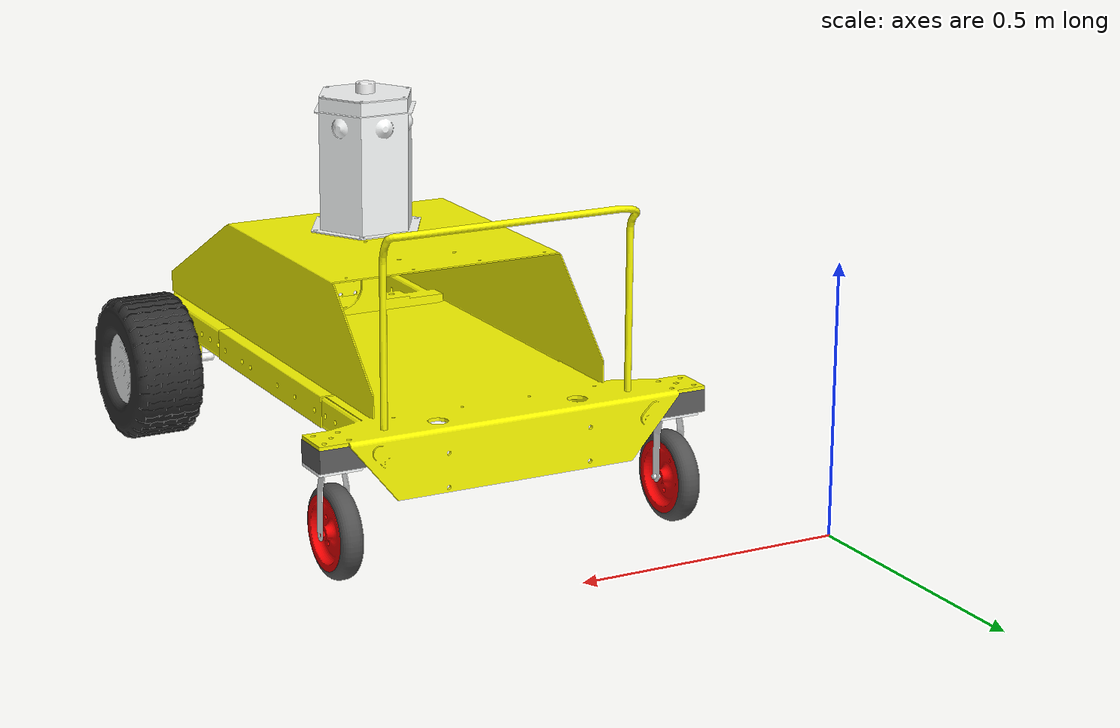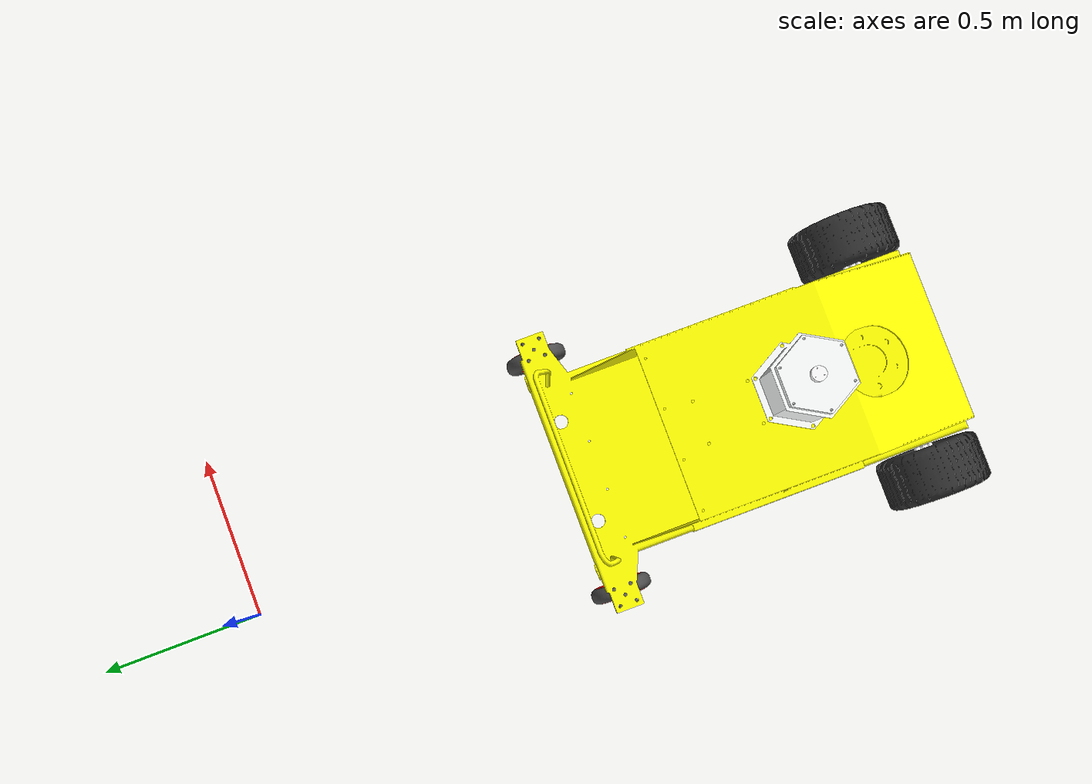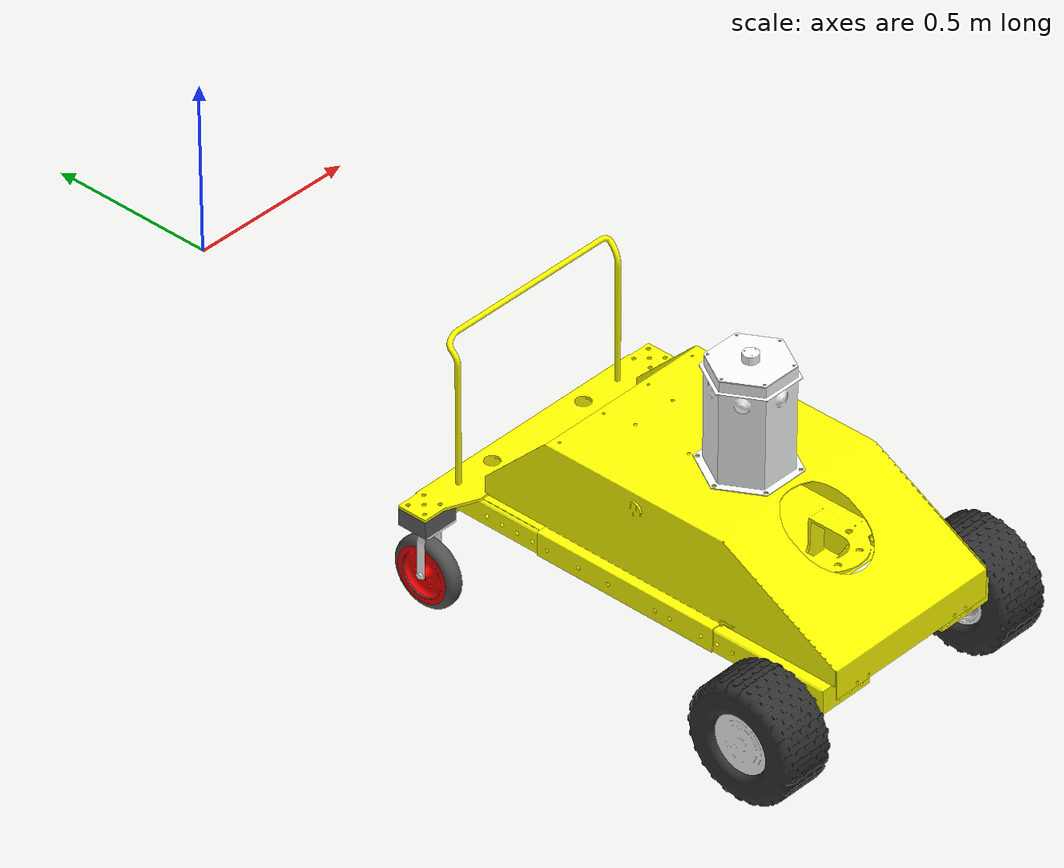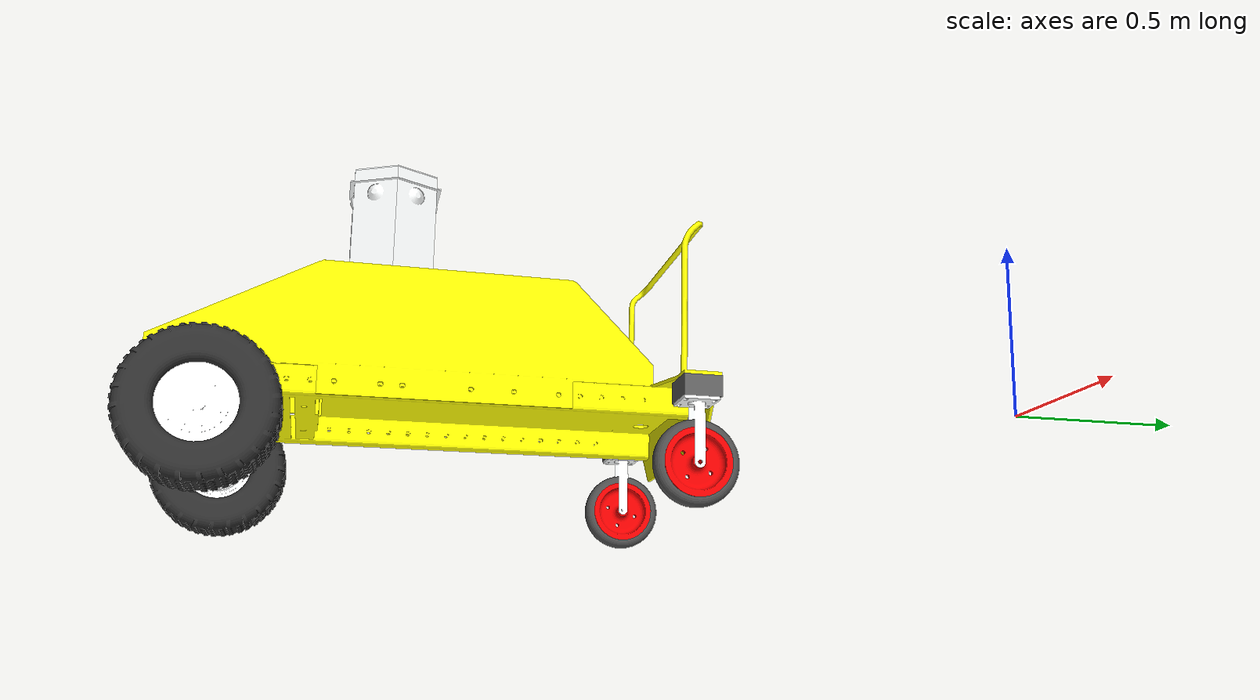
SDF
<sdf version='1.9'>
  <model name='diff_drive'>
    <link name='base_footprint'>
      <inertial>
        <pose>0.07544957438793549 -1.274730522447417 0.4900171970611519 0 0 0</pose>
        <mass>44.372311544085179</mass>
        <inertia>
          <ixx>69.291460034692093</ixx>
          <ixy>0.0020389307451935679</ixy>
          <ixz>-0.0028236960513194909</ixz>
          <iyy>33.544708364109603</iyy>
          <iyz>-32.893688374363478</iyz>
          <izz>42.136564144933899</izz>
        </inertia>
      </inertial>
      <collision name='base_footprint_fixed_joint_lump__base_link_collision'>
        <pose>0 0 0.001 0 0 0</pose>
        <geometry>
          <mesh>
            <scale>1 1 1</scale>
            <uri>model://diff_drive/meshes/visual/base_link.STL</uri>
          </mesh>
        </geometry>
      </collision>
      <collision name='base_footprint_fixed_joint_lump__casterSupportLeft_collision_1'>
        <pose>0.5162600000000001 -1.0733 -0.26944 1.5708 0 0</pose>
        <geometry>
          <mesh>
            <scale>1 1 1</scale>
            <uri>model://diff_drive/meshes/visual/casterSupportLeft.STL</uri>
          </mesh>
        </geometry>
      </collision>
      <collision name='base_footprint_fixed_joint_lump__casterHolderLeft_collision_2'>
        <pose>0.5162600000000001 -1.0733 -0.26944 1.5708 0 0</pose>
        <geometry>
          <mesh>
            <scale>1 1 1</scale>
            <uri>model://diff_drive/meshes/visual/casterHolderLeft.STL</uri>
          </mesh>
        </geometry>
      </collision>
      <collision name='base_footprint_fixed_joint_lump__casterSupportRight_collision_3'>
        <pose>-0.36024 -1.0733 -0.26944 1.5708 0 0</pose>
        <geometry>
          <mesh>
            <scale>1 1 1</scale>
            <uri>model://diff_drive/meshes/visual/casterSupportRight.STL</uri>
          </mesh>
        </geometry>
      </collision>
      <collision name='base_footprint_fixed_joint_lump__casterHolderRight_collision_4'>
        <pose>-0.36024 -1.0733 -0.26944 1.5708 0 0</pose>
        <geometry>
          <mesh>
            <scale>1 1 1</scale>
            <uri>model://diff_drive/meshes/visual/casterHolderRight.STL</uri>
          </mesh>
        </geometry>
      </collision>
      <collision name='base_footprint_fixed_joint_lump__chassis_collision_5'>
        <pose>0.07695787020212611 -1.52680535726289 0.181738869902464 1.5707963267949 0 0</pose>
        <geometry>
          <mesh>
            <scale>1 1 1</scale>
            <uri>model://diff_drive/meshes/visual/chassis.STL</uri>
          </mesh>
        </geometry>
      </collision>
      <collision name='base_footprint_fixed_joint_lump__tower_collision_6'>
        <pose>-0.009422172807446796 -1.706207102550672 0.3140945598622664 1.5707963267949 0 0</pose>
        <geometry>
          <mesh>
            <scale>1 1 1</scale>
            <uri>model://diff_drive/meshes/visual/tower.STL</uri>
          </mesh>
        </geometry>
      </collision>
      <collision name='base_footprint_fixed_joint_lump__lidar_collision_7'>
        <pose>0.0764647713571876 -1.756299895789236 0.5135084996232981 1.5707963267949 0 0</pose>
        <geometry>
          <mesh>
            <scale>1 1 1</scale>
            <uri>model://diff_drive/meshes/visual/lidar.STL</uri>
          </mesh>
        </geometry>
      </collision>
      <collision name='base_footprint_fixed_joint_lump__towerLid_collision_8'>
        <pose>-0.009422172807446796 -1.706207102550672 0.3140945598622664 1.5707963267949 0 0</pose>
        <geometry>
          <mesh>
            <scale>1 1 1</scale>
            <uri>model://diff_drive/meshes/visual/towerLid.STL</uri>
          </mesh>
        </geometry>
      </collision>
      <collision name='base_footprint_fixed_joint_lump__tireLeft_collision_9'>
        <pose>0.539077625848538 -2.14317773349735 -0.200666803080188 1.5707963267949 0 0</pose>
        <geometry>
          <mesh>
            <scale>1 1 1</scale>
            <uri>model://diff_drive/meshes/visual/tireLeft.STL</uri>
          </mesh>
        </geometry>
      </collision>
      <collision name='base_footprint_fixed_joint_lump__tireRIght_collision_10'>
        <pose>-0.387860216208303 -2.14524794513276 -0.201298122418271 1.5707963267949 0 0</pose>
        <geometry>
          <mesh>
            <scale>1 1 1</scale>
            <uri>model://diff_drive/meshes/visual/tireRIght.STL</uri>
          </mesh>
        </geometry>
      </collision>
      <visual name='base_footprint_visual'>
        <pose>0 0 0 0 0 0</pose>
        <geometry>
          <box>
            <size>0.001 0.001 0.001</size>
          </box>
        </geometry>
      </visual>
      <visual name='base_footprint_fixed_joint_lump__base_link_visual_1'>
        <pose>0 0 0.001 0 0 0</pose>
        <geometry>
          <mesh>
            <scale>1 1 1</scale>
            <uri>model://diff_drive/meshes/visual/base_link.STL</uri>
          </mesh>
        </geometry>
        <material>
          <diffuse>1 1 0 1</diffuse>
          <ambient>1 1 0 1</ambient>
        </material>
      </visual>
      <visual name='base_footprint_fixed_joint_lump__casterSupportLeft_visual_2'>
        <pose>0.5162600000000001 -1.0733 -0.26944 1.5708 0 0</pose>
        <geometry>
          <mesh>
            <scale>1 1 1</scale>
            <uri>model://diff_drive/meshes/visual/casterSupportLeft.STL</uri>
          </mesh>
        </geometry>
        <material>
          <diffuse>0.36765 0.36765 0.36765 1</diffuse>
          <ambient>0.36765 0.36765 0.36765 1</ambient>
        </material>
      </visual>
      <visual name='base_footprint_fixed_joint_lump__casterHolderLeft_visual_3'>
        <pose>0.5162600000000001 -1.0733 -0.26944 1.5708 0 0</pose>
        <geometry>
          <mesh>
            <scale>1 1 1</scale>
            <uri>model://diff_drive/meshes/visual/casterHolderLeft.STL</uri>
          </mesh>
        </geometry>
        <material>
          <diffuse>0.990196 1 1 1</diffuse>
          <ambient>0.990196 1 1 1</ambient>
        </material>
      </visual>
      <visual name='base_footprint_fixed_joint_lump__casterSupportRight_visual_4'>
        <pose>-0.36024 -1.0733 -0.26944 1.5708 0 0</pose>
        <geometry>
          <mesh>
            <scale>1 1 1</scale>
            <uri>model://diff_drive/meshes/visual/casterSupportRight.STL</uri>
          </mesh>
        </geometry>
        <material>
          <diffuse>0.36765 0.36765 0.36765 1</diffuse>
          <ambient>0.36765 0.36765 0.36765 1</ambient>
        </material>
      </visual>
      <visual name='base_footprint_fixed_joint_lump__casterHolderRight_visual_5'>
        <pose>-0.36024 -1.0733 -0.26944 1.5708 0 0</pose>
        <geometry>
          <mesh>
            <scale>1 1 1</scale>
            <uri>model://diff_drive/meshes/visual/casterHolderRight.STL</uri>
          </mesh>
        </geometry>
        <material>
          <diffuse>0.990196 1 1 1</diffuse>
          <ambient>0.990196 1 1 1</ambient>
        </material>
      </visual>
      <visual name='base_footprint_fixed_joint_lump__chassis_visual_6'>
        <pose>0.07695787020212611 -1.52680535726289 0.181738869902464 1.5707963267949 0 0</pose>
        <geometry>
          <mesh>
            <scale>1 1 1</scale>
            <uri>model://diff_drive/meshes/visual/chassis.STL</uri>
          </mesh>
        </geometry>
        <material>
          <diffuse>1 1 0 1</diffuse>
          <ambient>1 1 0 1</ambient>
        </material>
      </visual>
      <visual name='base_footprint_fixed_joint_lump__tower_visual_7'>
        <pose>-0.009422172807446796 -1.706207102550672 0.3140945598622664 1.5707963267949 0 0</pose>
        <geometry>
          <mesh>
            <scale>1 1 1</scale>
            <uri>model://diff_drive/meshes/visual/tower.STL</uri>
          </mesh>
        </geometry>
        <material>
          <diffuse>0.990196 1 1 1</diffuse>
          <ambient>0.990196 1 1 1</ambient>
        </material>
      </visual>
      <visual name='base_footprint_fixed_joint_lump__lidar_visual_8'>
        <pose>0.0764647713571876 -1.756299895789236 0.5135084996232981 1.5707963267949 0 0</pose>
        <geometry>
          <mesh>
            <scale>1 1 1</scale>
            <uri>model://diff_drive/meshes/visual/lidar.STL</uri>
          </mesh>
        </geometry>
        <material>
          <diffuse>1 1 1 1</diffuse>
          <ambient>1 1 1 1</ambient>
        </material>
      </visual>
      <visual name='base_footprint_fixed_joint_lump__towerLid_visual_9'>
        <pose>-0.009422172807446796 -1.706207102550672 0.3140945598622664 1.5707963267949 0 0</pose>
        <geometry>
          <mesh>
            <scale>1 1 1</scale>
            <uri>model://diff_drive/meshes/visual/towerLid.STL</uri>
          </mesh>
        </geometry>
        <material>
          <diffuse>0.990196 1 1 1</diffuse>
          <ambient>0.990196 1 1 1</ambient>
        </material>
      </visual>
      <visual name='base_footprint_fixed_joint_lump__tireLeft_visual_10'>
        <pose>0.539077625848538 -2.14317773349735 -0.200666803080188 1.5707963267949 0 0</pose>
        <geometry>
          <mesh>
            <scale>1 1 1</scale>
            <uri>model://diff_drive/meshes/visual/tireLeft.STL</uri>
          </mesh>
        </geometry>
        <material>
          <diffuse>1 1 1 1</diffuse>
          <ambient>1 1 1 1</ambient>
        </material>
      </visual>
      <visual name='base_footprint_fixed_joint_lump__tireRIght_visual_11'>
        <pose>-0.387860216208303 -2.14524794513276 -0.201298122418271 1.5707963267949 0 0</pose>
        <geometry>
          <mesh>
            <scale>1 1 1</scale>
            <uri>model://diff_drive/meshes/visual/tireRIght.STL</uri>
          </mesh>
        </geometry>
        <material>
          <diffuse>1 1 1 1</diffuse>
          <ambient>1 1 1 1</ambient>
        </material>
      </visual>
    </link>
    <joint name='caster_wheel_left' type='revolute'>
      <pose relative_to='base_footprint'>0.5162600000000001 -1.0733 -0.26944 1.5708 0 0</pose>
      <parent>base_footprint</parent>
      <child>casterWheelLeft</child>
      <axis>
        <xyz>1 0 0</xyz>
        <limit>
          <effort>1</effort>
          <velocity>10</velocity>
          <lower>-10000000000000000</lower>
          <upper>10000000000000000</upper>
        </limit>
        <dynamics>
          <damping>1</damping>
          <friction>1</friction>
          <spring_reference>0</spring_reference>
          <spring_stiffness>0</spring_stiffness>
        </dynamics>
      </axis>
    </joint>
    <link name='casterWheelLeft'>
      <pose relative_to='caster_wheel_left'>0 0 0 0 0 0</pose>
      <inertial>
        <pose>-0.04220770573721561 0.002619173292170959 0.0003715776106788175 0 0 0</pose>
        <mass>1.2449015684540321</mass>
        <inertia>
          <ixx>0.00717996926748666</ixx>
          <ixy>-1.0467158823718179e-15</ixy>
          <ixz>-7.7375782105322533e-16</ixz>
          <iyy>0.003802857392937101</iyy>
          <iyz>-6.4374503991326826e-20</iyz>
          <izz>0.003802857392937101</izz>
        </inertia>
      </inertial>
      <collision name='casterWheelLeft_collision'>
        <pose>0 0 0 0 0 0</pose>
        <geometry>
          <mesh>
            <scale>1 1 1</scale>
            <uri>model://diff_drive/meshes/visual/casterWheelLeft.STL</uri>
          </mesh>
        </geometry>
      </collision>
      <collision name='casterWheelLeft_fixed_joint_lump__casterTireLeft_collision_1'>
        <pose>0 0 0 0 0 0</pose>
        <geometry>
          <mesh>
            <scale>1 1 1</scale>
            <uri>model://diff_drive/meshes/visual/casterTireLeft.STL</uri>
          </mesh>
        </geometry>
      </collision>
      <visual name='casterWheelLeft_visual'>
        <pose>0 0 0 0 0 0</pose>
        <geometry>
          <mesh>
            <scale>1 1 1</scale>
            <uri>model://diff_drive/meshes/visual/casterWheelLeft.STL</uri>
          </mesh>
        </geometry>
        <material>
          <diffuse>0.941176 0 0 1</diffuse>
          <ambient>0.941176 0 0 1</ambient>
        </material>
      </visual>
      <visual name='casterWheelLeft_fixed_joint_lump__casterTireLeft_visual_1'>
        <pose>0 0 0 0 0 0</pose>
        <geometry>
          <mesh>
            <scale>1 1 1</scale>
            <uri>model://diff_drive/meshes/visual/casterTireLeft.STL</uri>
          </mesh>
        </geometry>
        <material>
          <diffuse>0.313726 0.313726 0.313726 1</diffuse>
          <ambient>0.313726 0.313726 0.313726 1</ambient>
        </material>
      </visual>
    </link>
    <joint name='caster_wheel_right' type='revolute'>
      <pose relative_to='base_footprint'>-0.36024 -1.0733 -0.26944 1.5708 0 0</pose>
      <parent>base_footprint</parent>
      <child>casterWheelRight</child>
      <axis>
        <xyz>1 0 0</xyz>
        <limit>
          <effort>1</effort>
          <velocity>10</velocity>
          <lower>-10000000000000000</lower>
          <upper>10000000000000000</upper>
        </limit>
        <dynamics>
          <spring_reference>0</spring_reference>
          <spring_stiffness>0</spring_stiffness>
        </dynamics>
      </axis>
    </joint>
    <link name='casterWheelRight'>
      <pose relative_to='caster_wheel_right'>0 0 0 0 0 0</pose>
      <inertial>
        <pose>0.03597480777191042 -0.001706324734967665 -0.000914080508363101 0 0 0</pose>
        <mass>1.244901568454033</mass>
        <inertia>
          <ixx>0.00717996926748666</ixx>
          <ixy>-8.1410030626505314e-17</ixy>
          <ixz>-8.2284168628071752e-17</ixz>
          <iyy>0.0038025279421822701</iyy>
          <iyz>-2.6427427954334171e-19</iyz>
          <izz>0.0038025279421822688</izz>
        </inertia>
      </inertial>
      <collision name='casterWheelRight_collision'>
        <pose>0 0 0 0 0 0</pose>
        <geometry>
          <mesh>
            <scale>1 1 1</scale>
            <uri>model://diff_drive/meshes/visual/casterWheelRight.STL</uri>
          </mesh>
        </geometry>
      </collision>
      <collision name='casterWheelRight_fixed_joint_lump__casterRIghtTIre_collision_1'>
        <pose>0 0 0 0 0 0</pose>
        <geometry>
          <mesh>
            <scale>1 1 1</scale>
            <uri>model://diff_drive/meshes/visual/casterRIghtTIre.STL</uri>
          </mesh>
        </geometry>
      </collision>
      <visual name='casterWheelRight_visual'>
        <pose>0 0 0 0 0 0</pose>
        <geometry>
          <mesh>
            <scale>1 1 1</scale>
            <uri>model://diff_drive/meshes/visual/casterWheelRight.STL</uri>
          </mesh>
        </geometry>
        <material>
          <diffuse>0.941176 0 0 1</diffuse>
          <ambient>0.941176 0 0 1</ambient>
        </material>
      </visual>
      <visual name='casterWheelRight_fixed_joint_lump__casterRIghtTIre_visual_1'>
        <pose>0 0 0 0 0 0</pose>
        <geometry>
          <mesh>
            <scale>1 1 1</scale>
            <uri>model://diff_drive/meshes/visual/casterRIghtTIre.STL</uri>
          </mesh>
        </geometry>
        <material>
          <diffuse>0.313726 0.313726 0.313726 1</diffuse>
          <ambient>0.313726 0.313726 0.313726 1</ambient>
        </material>
      </visual>
    </link>
    <joint name='wheel_left' type='revolute'>
      <pose relative_to='base_footprint'>0.539077625848538 -2.14317773349735 -0.200666803080188 1.5707963267949 0 0</pose>
      <parent>base_footprint</parent>
      <child>wheelLeft</child>
      <axis>
        <xyz>-1 0 0</xyz>
        <limit>
          <effort>1</effort>
          <velocity>10</velocity>
          <lower>-10000000000000000</lower>
          <upper>10000000000000000</upper>
        </limit>
        <dynamics>
          <spring_reference>0</spring_reference>
          <spring_stiffness>0</spring_stiffness>
        </dynamics>
      </axis>
    </joint>
    <link name='wheelLeft'>
      <pose relative_to='wheel_left'>0 0 0 0 0 0</pose>
      <inertial>
        <pose>-0.06319566481291858 -7.630909787843033e-07 2.794059481841153e-06 0 0 0</pose>
        <mass>4.2855214114456102</mass>
        <inertia>
          <ixx>0.061964553075777723</ixx>
          <ixy>1.4373568807399581e-08</ixy>
          <ixz>-6.0050905576853749e-08</ixz>
          <iyy>0.04288669065211357</iyy>
          <iyz>3.6050869949566921e-07</iyz>
          <izz>0.042885713985989532</izz>
        </inertia>
      </inertial>
      <collision name='wheelLeft_collision'>
        <pose>0 0 0 0 0 0</pose>
        <geometry>
          <mesh>
            <scale>1 1 1</scale>
            <uri>model://diff_drive/meshes/visual/wheelLeft.STL</uri>
          </mesh>
        </geometry>
      </collision>
      <collision name='wheelLeft_fixed_joint_lump__tyreLeft_collision_1'>
        <pose>0 0 0 0 0 0</pose>
        <geometry>
          <mesh>
            <scale>1 1 1</scale>
            <uri>model://diff_drive/meshes/visual/tyreLeft.STL</uri>
          </mesh>
        </geometry>
      </collision>
      <visual name='wheelLeft_visual'>
        <pose>0 0 0 0 0 0</pose>
        <geometry>
          <mesh>
            <scale>1 1 1</scale>
            <uri>model://diff_drive/meshes/visual/wheelLeft.STL</uri>
          </mesh>
        </geometry>
        <material>
          <diffuse>0.990196 1 1 1</diffuse>
          <ambient>0.990196 1 1 1</ambient>
        </material>
      </visual>
      <visual name='wheelLeft_fixed_joint_lump__tyreLeft_visual_1'>
        <pose>0 0 0 0 0 0</pose>
        <geometry>
          <mesh>
            <scale>1 1 1</scale>
            <uri>model://diff_drive/meshes/visual/tyreLeft.STL</uri>
          </mesh>
        </geometry>
        <material>
          <diffuse>0.186275 0.186275 0.186275 1</diffuse>
          <ambient>0.186275 0.186275 0.186275 1</ambient>
        </material>
      </visual>
    </link>
    <joint name='wheel_right' type='continous'>
      <pose relative_to='base_footprint'>-0.387860216208303 -2.14524794513276 -0.201298122418271 1.5707963267949 0 0</pose>
      <parent>base_footprint</parent>
      <child>wheelRight</child>
      <axis>
        <xyz>-1 0 0</xyz>
        <limit>
          <effort>1</effort>
          <velocity>100</velocity>
          <lower>-10000000000000000</lower>
          <upper>10000000000000000</upper>
        </limit>
        <dynamics>
          <spring_reference>0</spring_reference>
          <spring_stiffness>0</spring_stiffness>
        </dynamics>
      </axis>
    </joint>
    <link name='wheelRight'>
      <pose relative_to='wheel_right'>0 0 0 0 0 0</pose>
      <inertial>
        <pose>0.06319566481273385 -1.039266795087846e-06 2.7035159281915e-06 0 0 0</pose>
        <mass>4.2855214114547504</mass>
        <inertia>
          <ixx>0.061964554403022898</ixx>
          <ixy>-2.396840930859429e-08</ixy>
          <ixz>5.6903895160317801e-08</ixz>
          <iyy>0.042886690486960199</iyy>
          <iyz>3.5390732788100618e-07</iyz>
          <izz>0.04288571563775806</izz>
        </inertia>
      </inertial>
      <collision name='wheelRight_collision'>
        <pose>0 0 0 0 0 0</pose>
        <geometry>
          <mesh>
            <scale>1 1 1</scale>
            <uri>model://diff_drive/meshes/visual/wheelRight.STL</uri>
          </mesh>
        </geometry>
      </collision>
      <collision name='wheelRight_fixed_joint_lump__tyreRight_collision_1'>
        <pose>0 0 0 0 0 0</pose>
        <geometry>
          <mesh>
            <scale>1 1 1</scale>
            <uri>model://diff_drive/meshes/visual/tyreRight.STL</uri>
          </mesh>
        </geometry>
      </collision>
      <visual name='wheelRight_visual'>
        <pose>0 0 0 0 0 0</pose>
        <geometry>
          <mesh>
            <scale>1 1 1</scale>
            <uri>model://diff_drive/meshes/visual/wheelRight.STL</uri>
          </mesh>
        </geometry>
        <material>
          <diffuse>0.990196 1 1 1</diffuse>
          <ambient>0.990196 1 1 1</ambient>
        </material>
      </visual>
      <visual name='wheelRight_fixed_joint_lump__tyreRight_visual_1'>
        <pose>0 0 0 0 0 0</pose>
        <geometry>
          <mesh>
            <scale>1 1 1</scale>
            <uri>model://diff_drive/meshes/visual/tyreRight.STL</uri>
          </mesh>
        </geometry>
        <material>
          <diffuse>0.186275 0.186275 0.186275 1</diffuse>
          <ambient>0.186275 0.186275 0.186275 1</ambient>
        </material>
      </visual>
    </link>

    <plugin name='diff_drive' filename='libgazebo_ros_diff_drive.so'>
      <left_joint>wheel_left</left_joint>
      <right_joint>wheel_right</right_joint>
      <wheel_separation>1.297</wheel_separation>
      <wheel_diameter>0.066</wheel_diameter>
      <max_wheel_torque>200</max_wheel_torque>
      <max_wheel_acceleration>10.0</max_wheel_acceleration>
      <odometry_frame>odom</odometry_frame>
      <robot_base_frame>base_link</robot_base_frame>
      <publish_odom>true</publish_odom>
      <publish_odom_tf>true</publish_odom_tf>
      <publish_wheel_tf>true</publish_wheel_tf>
    </plugin>
    <frame name='caster_holder_left' attached_to='casterSupportLeft'>
      <pose>0 0 0 0 -0 0</pose>
    </frame>
    <frame name='casterHolderLeft' attached_to='caster_holder_left'/>
    <frame name='caster_tire_left' attached_to='casterWheelLeft'>
      <pose>0 0 0 0 -0 0</pose>
    </frame>
    <frame name='casterTireLeft' attached_to='caster_tire_left'/>
    <frame name='caster_support_left' attached_to='base_link'>
      <pose>0.51626 -1.0733 -0.27044 1.5708 -0 0</pose>
    </frame>
    <frame name='casterSupportLeft' attached_to='caster_support_left'/>
    <frame name='caster_holder_right' attached_to='casterSupportRight'>
      <pose>0 0 0 0 -0 0</pose>
    </frame>
    <frame name='casterHolderRight' attached_to='caster_holder_right'/>
    <frame name='caster_right_tire' attached_to='casterWheelRight'>
      <pose>0 0 0 0 -0 0</pose>
    </frame>
    <frame name='casterRIghtTIre' attached_to='caster_right_tire'/>
    <frame name='caster_support_right' attached_to='base_link'>
      <pose>-0.36024 -1.0733 -0.27044 1.5708 -0 0</pose>
    </frame>
    <frame name='casterSupportRight' attached_to='caster_support_right'/>
    <frame name='lidar_' attached_to='tower'>
      <pose>0.085887 0.199414 0.050093 0 -0 0</pose>
    </frame>
    <frame name='lidar' attached_to='lidar_'/>
    <frame name='tower_lid' attached_to='tower'>
      <pose>0 0 0 0 -0 0</pose>
    </frame>
    <frame name='towerLid' attached_to='tower_lid'/>
    <frame name='tower_' attached_to='chassis'>
      <pose>-0.08638 0.132356 0.179402 0 -0 0</pose>
    </frame>
    <frame name='tower' attached_to='tower_'/>
    <frame name='chassis_top' attached_to='base_link'>
      <pose>0.076958 -1.5268 0.180739 1.5708 -0 0</pose>
    </frame>
    <frame name='chassis' attached_to='chassis_top'/>
    <frame name='tire_left' attached_to='base_link'>
      <pose>0.539078 -2.14318 -0.201667 1.5708 -0 0</pose>
    </frame>
    <frame name='tireLeft' attached_to='tire_left'/>
    <frame name='tyre_left' attached_to='wheelLeft'>
      <pose>0 0 0 0 -0 0</pose>
    </frame>
    <frame name='tyreLeft' attached_to='tyre_left'/>
    <frame name='tire_right' attached_to='base_link'>
      <pose>-0.38786 -2.14525 -0.202298 1.5708 -0 0</pose>
    </frame>
    <frame name='tireRIght' attached_to='tire_right'/>
    <frame name='tyre_right' attached_to='wheelRight'>
      <pose>0 0 0 0 -0 0</pose>
    </frame>
    <frame name='tyreRight' attached_to='tyre_right'/>
    <frame name='base_footprint_joint' attached_to='base_footprint'>
      <pose>0 0 0.001 0 -0 0</pose>
    </frame>
    <frame name='base_link' attached_to='base_footprint_joint'/>
  </model>
</sdf>
